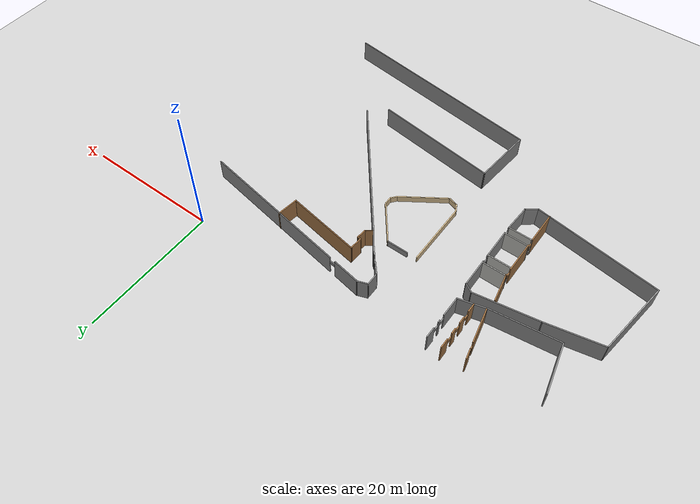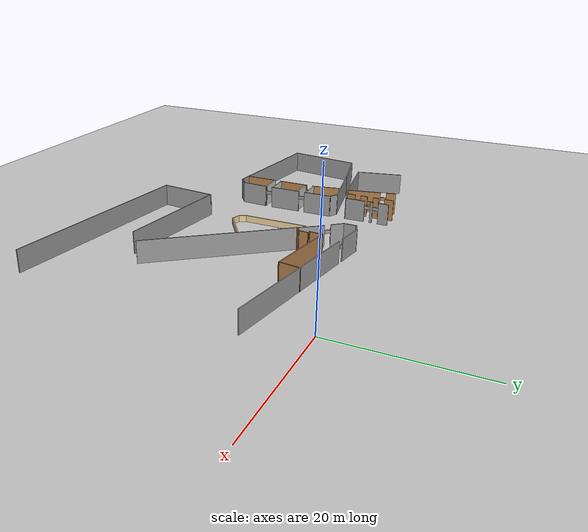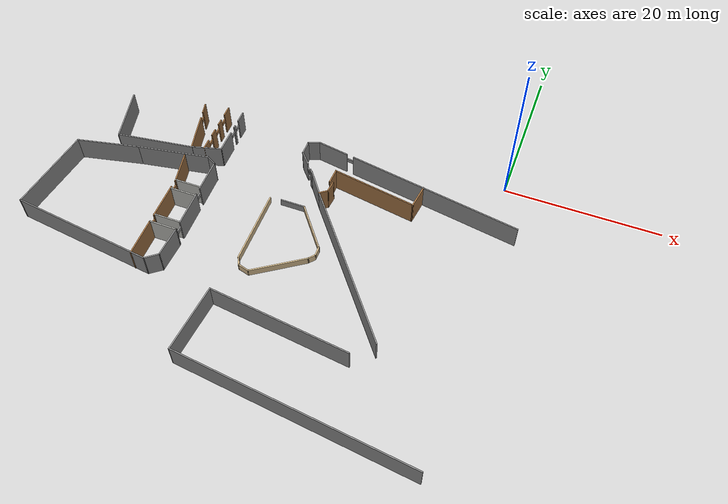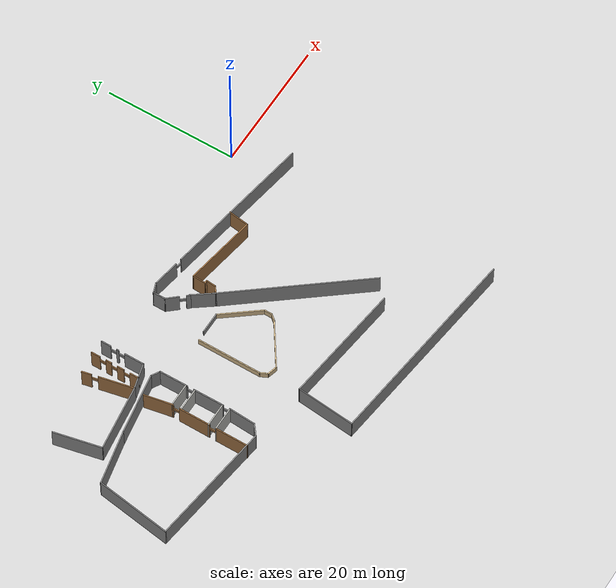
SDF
<sdf version="1.6">
 <world name="default">
  <model name="ground_plane">
   <static>1</static>
   <link name="link">
    <collision name="collision">
     <geometry><plane><normal>0 0 1</normal><size>100 100</size></plane></geometry>
     <surface><friction><ode><mu>100</mu><mu2>50</mu2></ode></friction></surface>
    </collision>
    <visual name="visual">
     <cast_shadows>0</cast_shadows>
     <geometry><plane><normal>0 0 1</normal><size>100 100</size></plane></geometry>
     <material>
      <script><uri>file://media/materials/scripts/gazebo.material</uri><name>Gazebo/Grey</name></script>
     </material>
    </visual>
   </link>
  </model>
  <model name="compound">
   <pose>3.54588 -0.628009 0 0 -0 0</pose>
   <link name="Wall_100">
    <collision name="Wall_100_Collision">
     <geometry><box><size>1.2615 0.15 4.0</size></box></geometry>
     <pose>0 0 1.25 0 -0 0</pose>
    </collision>
    <visual name="Wall_100_Visual">
     <pose>0 0 1.25 0 -0 0</pose>
     <geometry><box><size>1.2615 0.15 4.0</size></box></geometry>
     <material>
      <script><uri>file://media/materials/scripts/gazebo.material</uri><name>Gazebo/Wood</name></script>
      <ambient>1 1 1 1</ambient>
     </material>
     <meta><layer>0</layer></meta>
    </visual>
    <pose>-24.2062 -9.9319 0 0 -0 -2.50221</pose>
   </link>
   <link name="Wall_101">
    <collision name="Wall_101_Collision">
     <geometry><box><size>3.61722 0.15 4.0</size></box></geometry>
     <pose>0 0 1.25 0 -0 0</pose>
    </collision>
    <visual name="Wall_101_Visual">
     <pose>0 0 1.25 0 -0 0</pose>
     <geometry><box><size>3.61722 0.15 4.0</size></box></geometry>
     <material>
      <script><uri>file://media/materials/scripts/gazebo.material</uri><name>Gazebo/Grey</name></script>
      <ambient>1 1 1 1</ambient>
     </material>
     <meta><layer>0</layer></meta>
    </visual>
    <pose>-25.6814 -8.86844 0 0 -0 2.20638</pose>
   </link>
   <link name="Wall_103">
    <collision name="Wall_103_Collision">
     <geometry><box><size>22.2877 0.15 4.0</size></box></geometry>
     <pose>0 0 1.25 0 -0 0</pose>
    </collision>
    <visual name="Wall_103_Visual">
     <pose>0 0 1.25 0 -0 0</pose>
     <geometry><box><size>22.2877 0.15 4.0</size></box></geometry>
     <material>
      <script><uri>file://media/materials/scripts/gazebo.material</uri><name>Gazebo/Grey</name></script>
      <ambient>1 1 1 1</ambient>
     </material>
     <meta><layer>0</layer></meta>
    </visual>
    <pose>-17.8037 -18.9593 0 0 -0 -0.903682</pose>
   </link>
   <link name="Wall_110">
    <collision name="Wall_110_Collision">
     <geometry><box><size>18.1398 0.15 4.0</size></box></geometry>
     <pose>0 0 1.25 0 -0 0</pose>
    </collision>
    <visual name="Wall_110_Visual">
     <pose>0 0 1.25 0 -0 0</pose>
     <geometry><box><size>18.1398 0.15 4.0</size></box></geometry>
     <material>
      <script><uri>file://media/materials/scripts/gazebo.material</uri><name>Gazebo/Grey</name></script>
      <ambient>1 1 1 1</ambient>
     </material>
     <meta><layer>0</layer></meta>
    </visual>
    <pose>-22.3255 -28.6713 0 0 -0 3.01597</pose>
   </link>
   <link name="Wall_111">
    <collision name="Wall_111_Collision">
     <geometry><box><size>8.79176 0.15 4.0</size></box></geometry>
     <pose>0 0 1.25 0 -0 0</pose>
    </collision>
    <visual name="Wall_111_Visual">
     <pose>0 0 1.25 0 -0 0</pose>
     <geometry><box><size>8.79176 0.15 4.0</size></box></geometry>
     <material>
      <script><uri>file://media/materials/scripts/gazebo.material</uri><name>Gazebo/Grey</name></script>
      <ambient>1 1 1 1</ambient>
     </material>
     <meta><layer>0</layer></meta>
    </visual>
    <pose>-31.6635 -31.8453 0 0 -0 -1.66676</pose>
   </link>
   <link name="Wall_112">
    <collision name="Wall_112_Collision">
     <geometry><box><size>30.7378 0.15 4.0</size></box></geometry>
     <pose>0 0 1.25 0 -0 0</pose>
    </collision>
    <visual name="Wall_112_Visual">
     <pose>0 0 1.25 0 -0 0</pose>
     <geometry><box><size>30.7378 0.15 4.0</size></box></geometry>
     <material>
      <script><uri>file://media/materials/scripts/gazebo.material</uri><name>Gazebo/Grey</name></script>
      <ambient>1 1 1 1</ambient>
     </material>
     <meta><layer>0</layer></meta>
    </visual>
    <pose>-16.8975 -38.0092 0 0 -0 -0.122117</pose>
   </link>
   <link name="Wall_117">
    <collision name="Wall_117_Collision">
     <geometry><box><size>3.25 0.15 1</size></box></geometry>
     <pose>0 0 0.5 0 -0 0</pose>
    </collision>
    <visual name="Wall_117_Visual">
     <pose>0 0 0.5 0 -0 0</pose>
     <geometry><box><size>3.25 0.15 1</size></box></geometry>
     <material>
      <script><uri>file://media/materials/scripts/gazebo.material</uri><name>Gazebo/Grey</name></script>
      <ambient>1 1 1 1</ambient>
     </material>
     <meta><layer>0</layer></meta>
    </visual>
    <pose>-27.8447 -11.3314 0 0 -0 0</pose>
   </link>
   <link name="Wall_118">
    <collision name="Wall_118_Collision">
     <geometry><box><size>6.66654 0.15 1</size></box></geometry>
     <pose>0 0 0.5 0 -0 0</pose>
    </collision>
    <visual name="Wall_118_Visual">
     <pose>0 0 0.5 0 -0 0</pose>
     <geometry><box><size>6.66654 0.15 1</size></box></geometry>
     <material>
      <script><uri>file://media/materials/scripts/gazebo.material</uri><name>Gazebo/Grey</name></script>
      <ambient>0.921569 0.807843 0.615686 1</ambient>
     </material>
     <meta><layer>0</layer></meta>
    </visual>
    <pose>-24.2967 -13.9054 0 0 -0 -0.910722</pose>
   </link>
   <link name="Wall_119">
    <collision name="Wall_119_Collision">
     <geometry><box><size>1.29783 0.15 1</size></box></geometry>
     <pose>0 0 0.5 0 -0 0</pose>
    </collision>
    <visual name="Wall_119_Visual">
     <pose>0 0 0.5 0 -0 0</pose>
     <geometry><box><size>1.29783 0.15 1</size></box></geometry>
     <material>
      <script><uri>file://media/materials/scripts/gazebo.material</uri><name>Gazebo/Grey</name></script>
      <ambient>0.921569 0.807843 0.615686 1</ambient>
     </material>
     <meta><layer>0</layer></meta>
    </visual>
    <pose>-22.2987 -17.0529 0 0 -0 -1.5708</pose>
   </link>
   <link name="Wall_120">
    <collision name="Wall_120_Collision">
     <geometry><box><size>1.13871 0.15 1</size></box></geometry>
     <pose>0 0 0.5 0 -0 0</pose>
    </collision>
    <visual name="Wall_120_Visual">
     <pose>0 0 0.5 0 -0 0</pose>
     <geometry><box><size>1.13871 0.15 1</size></box></geometry>
     <material>
      <script><uri>file://media/materials/scripts/gazebo.material</uri><name>Gazebo/Grey</name></script>
      <ambient>0.921569 0.807843 0.615686 1</ambient>
     </material>
     <meta><layer>0</layer></meta>
    </visual>
    <pose>-22.6117 -18.0094 0 0 -0 -2.25596</pose>
   </link>
   <link name="Wall_121">
    <collision name="Wall_121_Collision">
     <geometry><box><size>7.46263 0.15 1</size></box></geometry>
     <pose>0 0 0.5 0 -0 0</pose>
    </collision>
    <visual name="Wall_121_Visual">
     <pose>0 0 0.5 0 -0 0</pose>
     <geometry><box><size>7.46263 0.15 1</size></box></geometry>
     <material>
      <script><uri>file://media/materials/scripts/gazebo.material</uri><name>Gazebo/Grey</name></script>
      <ambient>0.921569 0.807843 0.615686 1</ambient>
     </material>
     <meta><layer>0</layer></meta>
    </visual>
    <pose>-25.9512 -20.4444 0 0 -0 -2.54578</pose>
   </link>
   <link name="Wall_122">
    <collision name="Wall_122_Collision">
     <geometry><box><size>1.55945 0.15 1</size></box></geometry>
     <pose>0 0 0.5 0 -0 0</pose>
    </collision>
    <visual name="Wall_122_Visual">
     <pose>0 0 0.5 0 -0 0</pose>
     <geometry><box><size>1.55945 0.15 1</size></box></geometry>
     <material>
      <script><uri>file://media/materials/scripts/gazebo.material</uri><name>Gazebo/Grey</name></script>
      <ambient>0.921569 0.807843 0.615686 1</ambient>
     </material>
     <meta><layer>0</layer></meta>
    </visual>
    <pose>-29.6557 -22.3049 0 0 -0 2.86632</pose>
   </link>
   <link name="Wall_123">
    <collision name="Wall_123_Collision">
     <geometry><box><size>1.28564 0.15 1</size></box></geometry>
     <pose>0 0 0.5 0 -0 0</pose>
    </collision>
    <visual name="Wall_123_Visual">
     <pose>0 0 0.5 0 -0 0</pose>
     <geometry><box><size>1.28564 0.15 1</size></box></geometry>
     <material>
      <script><uri>file://media/materials/scripts/gazebo.material</uri><name>Gazebo/Grey</name></script>
      <ambient>0.921569 0.807843 0.615686 1</ambient>
     </material>
     <meta><layer>0</layer></meta>
    </visual>
    <pose>-30.5947 -21.6094 0 0 -0 2.04863</pose>
   </link>
   <link name="Wall_126">
    <collision name="Wall_126_Collision">
     <geometry><box><size>9.35636 0.15 4.0</size></box></geometry>
     <pose>0 0 1.25 0 -0 0</pose>
    </collision>
    <visual name="Wall_126_Visual">
     <pose>0 0 1.25 0 -0 0</pose>
     <geometry><box><size>9.35636 0.15 4.0</size></box></geometry>
     <material>
      <script><uri>file://media/materials/scripts/gazebo.material</uri><name>Gazebo/Grey</name></script>
      <ambient>1 1 1 1</ambient>
     </material>
     <meta><layer>0</layer></meta>
    </visual>
    <pose>-44.5077 -10.5659 0 0 -0 0.167012</pose>
   </link>
   <link name="Wall_127">
    <collision name="Wall_127_Collision">
     <geometry><box><size>1.52204 0.15 4.0</size></box></geometry>
     <pose>0 0 1.25 0 -0 0</pose>
    </collision>
    <visual name="Wall_127_Visual">
     <pose>0 0 1.25 0 -0 0</pose>
     <geometry><box><size>1.52204 0.15 4.0</size></box></geometry>
     <material>
      <script><uri>file://media/materials/scripts/gazebo.material</uri><name>Gazebo/Grey</name></script>
      <ambient>1 1 1 1</ambient>
     </material>
     <meta><layer>0</layer></meta>
    </visual>
    <pose>-39.3773 -10.1486 0 0 -0 -0.531724</pose>
   </link>
   <link name="Wall_128">
    <pose>-38.7338 -15.9399 0 0 -0 -1.56121</pose>
    <visual name="Wall_128_Visual_0">
     <pose>-3.32744 0 1.25 0 -0 0</pose>
     <geometry><box><size>4.38207 0.15 4.0</size></box></geometry>
     <material>
      <script><uri>file://media/materials/scripts/gazebo.material</uri><name>Gazebo/Grey</name></script>
      <ambient>1 1 1 1</ambient>
     </material>
     <meta><layer>0</layer></meta>
    </visual>
    <collision name="Wall_128_Collision_0">
     <geometry><box><size>4.38207 0.15 4.0</size></box></geometry>
     <pose>-3.32744 0 1.25 0 -0 0</pose>
    </collision>
    <visual name="Wall_128_Visual_1">
     <pose>2.09262 0 1.25 0 -0 0</pose>
     <geometry><box><size>4.65806 0.15 4.0</size></box></geometry>
     <material>
      <script><uri>file://media/materials/scripts/gazebo.material</uri><name>Gazebo/Grey</name></script>
      <ambient>1 1 1 1</ambient>
     </material>
     <meta><layer>0</layer></meta>
    </visual>
    <collision name="Wall_128_Collision_1">
     <geometry><box><size>4.65806 0.15 4.0</size></box></geometry>
     <pose>2.09262 0 1.25 0 -0 0</pose>
    </collision>
    <visual name="Wall_128_Visual_2">
     <pose>5.42007 0 1.25 0 -0 0</pose>
     <geometry><box><size>0.196825 0.15 4.0</size></box></geometry>
     <material>
      <script><uri>file://media/materials/scripts/gazebo.material</uri><name>Gazebo/Grey</name></script>
      <ambient>1 1 1 1</ambient>
     </material>
     <meta><layer>0</layer></meta>
    </visual>
    <collision name="Wall_128_Collision_2">
     <geometry><box><size>0.196825 0.15 4.0</size></box></geometry>
     <pose>5.42007 0 1.25 0 -0 0</pose>
    </collision>
    <visual name="Wall_128_Visual_3">
     <pose>-0.68641 0 2.25 0 -0 0</pose>
     <geometry><box><size>0.9 0.15 0.5</size></box></geometry>
     <material>
      <script><uri>file://media/materials/scripts/gazebo.material</uri><name>Gazebo/Grey</name></script>
      <ambient>1 1 1 1</ambient>
     </material>
     <meta><layer>0</layer></meta>
    </visual>
    <collision name="Wall_128_Collision_3">
     <geometry><box><size>0.9 0.15 0.5</size></box></geometry>
     <pose>-0.68641 0 2.25 0 -0 0</pose>
    </collision>
    <visual name="Wall_128_Visual_4">
     <pose>4.87165 0 2.25 0 -0 0</pose>
     <geometry><box><size>0.9 0.15 0.5</size></box></geometry>
     <material>
      <script><uri>file://media/materials/scripts/gazebo.material</uri><name>Gazebo/Grey</name></script>
      <ambient>1 1 1 1</ambient>
     </material>
     <meta><layer>0</layer></meta>
    </visual>
    <collision name="Wall_128_Collision_4">
     <geometry><box><size>0.9 0.15 0.5</size></box></geometry>
     <pose>4.87165 0 2.25 0 -0 0</pose>
    </collision>
   </link>
   <link name="Wall_130">
    <collision name="Wall_130_Collision">
     <geometry><box><size>4.0821 0.15 4.0</size></box></geometry>
     <pose>0 0 1.25 0 -0 0</pose>
    </collision>
    <visual name="Wall_130_Visual">
     <pose>0 0 1.25 0 -0 0</pose>
     <geometry><box><size>4.0821 0.15 4.0</size></box></geometry>
     <material>
      <script><uri>file://media/materials/scripts/gazebo.material</uri><name>Gazebo/Grey</name></script>
      <ambient>1 1 1 1</ambient>
     </material>
     <meta><layer>0</layer></meta>
    </visual>
    <pose>-38.7887 -23.3465 0 0 -0 -1.62528</pose>
   </link>
   <link name="Wall_131">
    <collision name="Wall_131_Collision">
     <geometry><box><size>1.97428 0.15 4.0</size></box></geometry>
     <pose>0 0 1.25 0 -0 0</pose>
    </collision>
    <visual name="Wall_131_Visual">
     <pose>0 0 1.25 0 -0 0</pose>
     <geometry><box><size>1.97428 0.15 4.0</size></box></geometry>
     <material>
      <script><uri>file://media/materials/scripts/gazebo.material</uri><name>Gazebo/Grey</name></script>
      <ambient>1 1 1 1</ambient>
     </material>
     <meta><layer>0</layer></meta>
    </visual>
    <pose>-39.6158 -25.8696 0 0 -0 -2.48055</pose>
   </link>
   <link name="Wall_132">
    <collision name="Wall_132_Collision">
     <geometry><box><size>18.4679 0.15 4.0</size></box></geometry>
     <pose>0 0 1.25 0 -0 0</pose>
    </collision>
    <visual name="Wall_132_Visual">
     <pose>0 0 1.25 0 -0 0</pose>
     <geometry><box><size>18.4679 0.15 4.0</size></box></geometry>
     <material>
      <script><uri>file://media/materials/scripts/gazebo.material</uri><name>Gazebo/Grey</name></script>
      <ambient>1 1 1 1</ambient>
     </material>
     <meta><layer>0</layer></meta>
    </visual>
    <pose>-49.4158 -25.2296 0 0 -0 3.0102</pose>
   </link>
   <link name="Wall_134">
    <collision name="Wall_134_Collision">
     <geometry><box><size>8.21137 0.15 4.0</size></box></geometry>
     <pose>0 0 1.25 0 -0 0</pose>
    </collision>
    <visual name="Wall_134_Visual">
     <pose>0 0 1.25 0 -0 0</pose>
     <geometry><box><size>8.21137 0.15 4.0</size></box></geometry>
     <material>
      <script><uri>file://media/materials/scripts/gazebo.material</uri><name>Gazebo/Grey</name></script>
      <ambient>1 1 1 1</ambient>
     </material>
     <meta><layer>0</layer></meta>
    </visual>
    <pose>-52.9913 -12.1604 0 0 -0 -2.93439</pose>
   </link>
   <link name="Wall_135">
    <collision name="Wall_135_Collision">
     <geometry><box><size>11.3053 0.15 4.0</size></box></geometry>
     <pose>0 0 1.25 0 -0 0</pose>
    </collision>
    <visual name="Wall_135_Visual">
     <pose>0 0 1.25 0 -0 0</pose>
     <geometry><box><size>11.3053 0.15 4.0</size></box></geometry>
     <material>
      <script><uri>file://media/materials/scripts/gazebo.material</uri><name>Gazebo/Grey</name></script>
      <ambient>1 1 1 1</ambient>
     </material>
     <meta><layer>0</layer></meta>
    </visual>
    <pose>-57.7358 -18.5096 0 0 -0 -1.71472</pose>
   </link>
   <link name="Wall_137">
    <collision name="Wall_137_Collision">
     <geometry><box><size>7.19936 0.15 4.0</size></box></geometry>
     <pose>0 0 1.25 0 -0 0</pose>
    </collision>
    <visual name="Wall_137_Visual">
     <pose>0 0 1.25 0 -0 0</pose>
     <geometry><box><size>7.19936 0.15 4.0</size></box></geometry>
     <material>
      <script><uri>file://media/materials/scripts/gazebo.material</uri><name>Gazebo/Grey</name></script>
      <ambient>1 1 1 1</ambient>
     </material>
     <meta><layer>0</layer></meta>
    </visual>
    <pose>-53.2303 -6.88402 0 0 -0 -1.35499</pose>
   </link>
   <link name="Wall_138">
    <collision name="Wall_138_Collision">
     <geometry><box><size>10.0396 0.15 4.0</size></box></geometry>
     <pose>0 0 1.25 0 -0 0</pose>
    </collision>
    <visual name="Wall_138_Visual">
     <pose>0 0 1.25 0 -0 0</pose>
     <geometry><box><size>10.0396 0.15 4.0</size></box></geometry>
     <material>
      <script><uri>file://media/materials/scripts/gazebo.material</uri><name>Gazebo/Grey</name></script>
      <ambient>1 1 1 1</ambient>
     </material>
     <meta><layer>0</layer></meta>
    </visual>
    <pose>-47.5758 -9.66154 0 0 -0 0.134977</pose>
   </link>
   <link name="Wall_140">
    <collision name="Wall_140_Collision">
     <geometry><box><size>3.5 0.15 4.0</size></box></geometry>
     <pose>0 0 1.25 0 -0 0</pose>
    </collision>
    <visual name="Wall_140_Visual">
     <pose>0 0 1.25 0 -0 0</pose>
     <geometry><box><size>3.5 0.15 4.0</size></box></geometry>
     <material>
      <script><uri>file://media/materials/scripts/gazebo.material</uri><name>Gazebo/CeilingTiled</name></script>
      <ambient>1 1 1 1</ambient>
     </material>
     <meta><layer>0</layer></meta>
    </visual>
    <pose>-40.4795 -14.5311 0 0 -0 3.14159</pose>
   </link>
   <link name="Wall_142">
    <collision name="Wall_142_Collision">
     <geometry><box><size>4.16404 0.15 4.0</size></box></geometry>
     <pose>0 0 1.25 0 -0 0</pose>
    </collision>
    <visual name="Wall_142_Visual">
     <pose>0 0 1.25 0 -0 0</pose>
     <geometry><box><size>4.16404 0.15 4.0</size></box></geometry>
     <material>
      <script><uri>file://media/materials/scripts/gazebo.material</uri><name>Gazebo/Wood</name></script>
      <ambient>1 1 1 1</ambient>
     </material>
     <meta><layer>0</layer></meta>
    </visual>
    <pose>-42.5314 -12.5598 0 0 -0 -1.3819</pose>
   </link>
   <link name="Wall_143">
    <pose>-42.1545 -17.9561 0 0 -0 -1.5708</pose>
    <visual name="Wall_143_Visual_0">
     <pose>-3.3375 0 1.25 0 -0 0</pose>
     <geometry><box><size>0.324998 0.15 4.0</size></box></geometry>
     <material>
      <script><uri>file://media/materials/scripts/gazebo.material</uri><name>Gazebo/Wood</name></script>
      <ambient>1 1 1 1</ambient>
     </material>
     <meta><layer>0</layer></meta>
    </visual>
    <collision name="Wall_143_Collision_0">
     <geometry><box><size>0.324998 0.15 4.0</size></box></geometry>
     <pose>-3.3375 0 1.25 0 -0 0</pose>
    </collision>
    <visual name="Wall_143_Visual_1">
     <pose>0.110893 0 1.25 0 -0 0</pose>
     <geometry><box><size>4.77179 0.15 4.0</size></box></geometry>
     <material>
      <script><uri>file://media/materials/scripts/gazebo.material</uri><name>Gazebo/Wood</name></script>
      <ambient>1 1 1 1</ambient>
     </material>
     <meta><layer>0</layer></meta>
    </visual>
    <collision name="Wall_143_Collision_1">
     <geometry><box><size>4.77179 0.15 4.0</size></box></geometry>
     <pose>0.110893 0 1.25 0 -0 0</pose>
    </collision>
    <visual name="Wall_143_Visual_2">
     <pose>3.44839 0 1.25 0 -0 0</pose>
     <geometry><box><size>0.103211 0.15 4.0</size></box></geometry>
     <material>
      <script><uri>file://media/materials/scripts/gazebo.material</uri><name>Gazebo/Wood</name></script>
      <ambient>1 1 1 1</ambient>
     </material>
     <meta><layer>0</layer></meta>
    </visual>
    <collision name="Wall_143_Collision_2">
     <geometry><box><size>0.103211 0.15 4.0</size></box></geometry>
     <pose>3.44839 0 1.25 0 -0 0</pose>
    </collision>
    <visual name="Wall_143_Visual_3">
     <pose>-2.725 0 2.25 0 -0 0</pose>
     <geometry><box><size>0.9 0.15 0.5</size></box></geometry>
     <material>
      <script><uri>file://media/materials/scripts/gazebo.material</uri><name>Gazebo/Wood</name></script>
      <ambient>1 1 1 1</ambient>
     </material>
     <meta><layer>0</layer></meta>
    </visual>
    <collision name="Wall_143_Collision_3">
     <geometry><box><size>0.9 0.15 0.5</size></box></geometry>
     <pose>-2.725 0 2.25 0 -0 0</pose>
    </collision>
    <visual name="Wall_143_Visual_4">
     <pose>2.94679 0 2.25 0 -0 0</pose>
     <geometry><box><size>0.9 0.15 0.5</size></box></geometry>
     <material>
      <script><uri>file://media/materials/scripts/gazebo.material</uri><name>Gazebo/Wood</name></script>
      <ambient>1 1 1 1</ambient>
     </material>
     <meta><layer>0</layer></meta>
    </visual>
    <collision name="Wall_143_Collision_4">
     <geometry><box><size>0.9 0.15 0.5</size></box></geometry>
     <pose>2.94679 0 2.25 0 -0 0</pose>
    </collision>
   </link>
   <link name="Wall_144">
    <collision name="Wall_144_Collision">
     <geometry><box><size>3.62289 0.15 4.0</size></box></geometry>
     <pose>0 0 1.25 0 -0 0</pose>
    </collision>
    <visual name="Wall_144_Visual">
     <pose>0 0 1.25 0 -0 0</pose>
     <geometry><box><size>3.62289 0.15 4.0</size></box></geometry>
     <material>
      <script><uri>file://media/materials/scripts/gazebo.material</uri><name>Gazebo/CeilingTiled</name></script>
      <ambient>1 1 1 1</ambient>
     </material>
     <meta><layer>0</layer></meta>
    </visual>
    <pose>-40.4181 -21.3822 0 0 -0 -0.000643</pose>
   </link>
   <link name="Wall_146">
    <collision name="Wall_146_Collision">
     <geometry><box><size>3.5 0.15 4.0</size></box></geometry>
     <pose>0 0 1.25 0 -0 0</pose>
    </collision>
    <visual name="Wall_146_Visual">
     <pose>0 0 1.25 0 -0 0</pose>
     <geometry><box><size>3.5 0.15 4.0</size></box></geometry>
     <material>
      <script><uri>file://media/materials/scripts/gazebo.material</uri><name>Gazebo/CeilingTiled</name></script>
      <ambient>1 1 1 1</ambient>
     </material>
     <meta><layer>0</layer></meta>
    </visual>
    <pose>-40.4437 -15.9401 0 0 -0 3.14159</pose>
   </link>
   <link name="Wall_148">
    <collision name="Wall_148_Collision">
     <geometry><box><size>3.5 0.15 4.0</size></box></geometry>
     <pose>0 0 1.25 0 -0 0</pose>
    </collision>
    <visual name="Wall_148_Visual">
     <pose>0 0 1.25 0 -0 0</pose>
     <geometry><box><size>3.5 0.15 4.0</size></box></geometry>
     <material>
      <script><uri>file://media/materials/scripts/gazebo.material</uri><name>Gazebo/CeilingTiled</name></script>
      <ambient>1 1 1 1</ambient>
     </material>
     <meta><layer>0</layer></meta>
    </visual>
    <pose>-40.5014 -20.2397 0 0 -0 0</pose>
   </link>
   <link name="Wall_150">
    <collision name="Wall_150_Collision">
     <geometry><box><size>5 0.15 4.0</size></box></geometry>
     <pose>0 0 1.25 0 -0 0</pose>
    </collision>
    <visual name="Wall_150_Visual">
     <pose>0 0 1.25 0 -0 0</pose>
     <geometry><box><size>5 0.15 4.0</size></box></geometry>
     <material>
      <script><uri>file://media/materials/scripts/gazebo.material</uri><name>Gazebo/Wood</name></script>
      <ambient>1 1 1 1</ambient>
     </material>
     <meta><layer>0</layer></meta>
    </visual>
    <pose>-42.1545 -23.8061 0 0 -0 -1.5708</pose>
   </link>
   <link name="Wall_152">
    <collision name="Wall_152_Collision">
     <geometry><box><size>9.75 0.15 1</size></box></geometry>
     <pose>0 0 0.5 0 -0 0</pose>
    </collision>
    <visual name="Wall_152_Visual">
     <pose>0 0 0.5 0 -0 0</pose>
     <geometry><box><size>9.75 0.15 1</size></box></geometry>
     <material>
      <script><uri>file://media/materials/scripts/gazebo.material</uri><name>Gazebo/Grey</name></script>
      <ambient>0.921569 0.807843 0.615686 1</ambient>
     </material>
     <meta><layer>0</layer></meta>
    </visual>
    <pose>-30.8557 -16.3054 0 0 -0 1.5708</pose>
   </link>
   <link name="Wall_21">
    <pose>-13.9659 -4.88689 0 0 -0 2.97597</pose>
    <visual name="Wall_21_Visual_0">
     <pose>-2.53416 0 1.25 0 -0 0</pose>
     <geometry><box><size>22.7402 0.15 4.0</size></box></geometry>
     <material>
      <script><uri>file://media/materials/scripts/gazebo.material</uri><name>Gazebo/Grey</name></script>
      <ambient>1 1 1 1</ambient>
     </material>
     <meta><layer>0</layer></meta>
    </visual>
    <collision name="Wall_21_Collision_0">
     <geometry><box><size>22.7402 0.15 4.0</size></box></geometry>
     <pose>-2.53416 0 1.25 0 -0 0</pose>
    </collision>
    <visual name="Wall_21_Visual_1">
     <pose>11.8201 0 1.25 0 -0 0</pose>
     <geometry><box><size>4.16831 0.15 4.0</size></box></geometry>
     <material>
      <script><uri>file://media/materials/scripts/gazebo.material</uri><name>Gazebo/Grey</name></script>
      <ambient>1 1 1 1</ambient>
     </material>
     <meta><layer>0</layer></meta>
    </visual>
    <collision name="Wall_21_Collision_1">
     <geometry><box><size>4.16831 0.15 4.0</size></box></geometry>
     <pose>11.8201 0 1.25 0 -0 0</pose>
    </collision>
    <visual name="Wall_21_Visual_2">
     <pose>9.28593 0 2.25 0 -0 0</pose>
     <geometry><box><size>0.9 0.15 0.5</size></box></geometry>
     <material>
      <script><uri>file://media/materials/scripts/gazebo.material</uri><name>Gazebo/Grey</name></script>
      <ambient>1 1 1 1</ambient>
     </material>
     <meta><layer>0</layer></meta>
    </visual>
    <collision name="Wall_21_Collision_2">
     <geometry><box><size>0.9 0.15 0.5</size></box></geometry>
     <pose>9.28593 0 2.25 0 -0 0</pose>
    </collision>
   </link>
   <link name="Wall_22">
    <collision name="Wall_22_Collision">
     <geometry><box><size>1.60602 0.15 4.0</size></box></geometry>
     <pose>0 0 1.25 0 -0 0</pose>
    </collision>
    <visual name="Wall_22_Visual">
     <pose>0 0 1.25 0 -0 0</pose>
     <geometry><box><size>1.60602 0.15 4.0</size></box></geometry>
     <material>
      <script><uri>file://media/materials/scripts/gazebo.material</uri><name>Gazebo/Grey</name></script>
      <ambient>1 1 1 1</ambient>
     </material>
     <meta><layer>0</layer></meta>
    </visual>
    <pose>-28.2859 -2.86689 0 0 -0 -2.77639</pose>
   </link>
   <link name="Wall_23">
    <collision name="Wall_23_Collision">
     <geometry><box><size>1.95044 0.15 4.0</size></box></geometry>
     <pose>0 0 1.25 0 -0 0</pose>
    </collision>
    <visual name="Wall_23_Visual">
     <pose>0 0 1.25 0 -0 0</pose>
     <geometry><box><size>1.95044 0.15 4.0</size></box></geometry>
     <material>
      <script><uri>file://media/materials/scripts/gazebo.material</uri><name>Gazebo/Grey</name></script>
      <ambient>1 1 1 1</ambient>
     </material>
     <meta><layer>0</layer></meta>
    </visual>
    <pose>-28.9659 -4.02689 0 0 -0 -1.5708</pose>
   </link>
   <link name="Wall_24">
    <pose>-27.8459 -6.22689 0 0 -0 -0.859642</pose>
    <visual name="Wall_24_Visual_0">
     <pose>-0.765202 0 1.25 0 -0 0</pose>
     <geometry><box><size>2.05145 0.15 4.0</size></box></geometry>
     <material>
      <script><uri>file://media/materials/scripts/gazebo.material</uri><name>Gazebo/Grey</name></script>
      <ambient>1 1 1 1</ambient>
     </material>
     <meta><layer>0</layer></meta>
    </visual>
    <collision name="Wall_24_Collision_0">
     <geometry><box><size>2.05145 0.15 4.0</size></box></geometry>
     <pose>-0.765202 0 1.25 0 -0 0</pose>
    </collision>
    <visual name="Wall_24_Visual_1">
     <pose>1.47572 0 1.25 0 -0 0</pose>
     <geometry><box><size>0.630403 0.15 4.0</size></box></geometry>
     <material>
      <script><uri>file://media/materials/scripts/gazebo.material</uri><name>Gazebo/Grey</name></script>
      <ambient>1 1 1 1</ambient>
     </material>
     <meta><layer>0</layer></meta>
    </visual>
    <collision name="Wall_24_Collision_1">
     <geometry><box><size>0.630403 0.15 4.0</size></box></geometry>
     <pose>1.47572 0 1.25 0 -0 0</pose>
    </collision>
    <visual name="Wall_24_Visual_2">
     <pose>0.710522 0 2.25 0 -0 0</pose>
     <geometry><box><size>0.9 0.15 0.5</size></box></geometry>
     <material>
      <script><uri>file://media/materials/scripts/gazebo.material</uri><name>Gazebo/Grey</name></script>
      <ambient>1 1 1 1</ambient>
     </material>
     <meta><layer>0</layer></meta>
    </visual>
    <collision name="Wall_24_Collision_2">
     <geometry><box><size>0.9 0.15 0.5</size></box></geometry>
     <pose>0.710522 0 2.25 0 -0 0</pose>
    </collision>
   </link>
   <link name="Wall_26">
    <pose>-38.9925 -4.68484 0 0 -0 1.5708</pose>
    <visual name="Wall_26_Visual_0">
     <pose>-1.85475 0 1.25 0 -0 0</pose>
     <geometry><box><size>3.04051 0.15 4.0</size></box></geometry>
     <material>
      <script><uri>file://media/materials/scripts/gazebo.material</uri><name>Gazebo/Grey</name></script>
      <ambient>1 1 1 1</ambient>
     </material>
     <meta><layer>0</layer></meta>
    </visual>
    <collision name="Wall_26_Collision_0">
     <geometry><box><size>3.04051 0.15 4.0</size></box></geometry>
     <pose>-1.85475 0 1.25 0 -0 0</pose>
    </collision>
    <visual name="Wall_26_Visual_1">
     <pose>0.751895 0 1.25 0 -0 0</pose>
     <geometry><box><size>0.372772 0.15 4.0</size></box></geometry>
     <material>
      <script><uri>file://media/materials/scripts/gazebo.material</uri><name>Gazebo/Grey</name></script>
      <ambient>1 1 1 1</ambient>
     </material>
     <meta><layer>0</layer></meta>
    </visual>
    <collision name="Wall_26_Collision_1">
     <geometry><box><size>0.372772 0.15 4.0</size></box></geometry>
     <pose>0.751895 0 1.25 0 -0 0</pose>
    </collision>
    <visual name="Wall_26_Visual_2">
     <pose>2.60664 0 1.25 0 -0 0</pose>
     <geometry><box><size>1.53672 0.15 4.0</size></box></geometry>
     <material>
      <script><uri>file://media/materials/scripts/gazebo.material</uri><name>Gazebo/Grey</name></script>
      <ambient>1 1 1 1</ambient>
     </material>
     <meta><layer>0</layer></meta>
    </visual>
    <collision name="Wall_26_Collision_2">
     <geometry><box><size>1.53672 0.15 4.0</size></box></geometry>
     <pose>2.60664 0 1.25 0 -0 0</pose>
    </collision>
    <visual name="Wall_26_Visual_3">
     <pose>0.115509 0 2.25 0 -0 0</pose>
     <geometry><box><size>0.9 0.15 0.5</size></box></geometry>
     <material>
      <script><uri>file://media/materials/scripts/gazebo.material</uri><name>Gazebo/Grey</name></script>
      <ambient>1 1 1 1</ambient>
     </material>
     <meta><layer>0</layer></meta>
    </visual>
    <collision name="Wall_26_Collision_3">
     <geometry><box><size>0.9 0.15 0.5</size></box></geometry>
     <pose>0.115509 0 2.25 0 -0 0</pose>
    </collision>
    <visual name="Wall_26_Visual_4">
     <pose>1.38828 0 2.25 0 -0 0</pose>
     <geometry><box><size>0.9 0.15 0.5</size></box></geometry>
     <material>
      <script><uri>file://media/materials/scripts/gazebo.material</uri><name>Gazebo/Grey</name></script>
      <ambient>1 1 1 1</ambient>
     </material>
     <meta><layer>0</layer></meta>
    </visual>
    <collision name="Wall_26_Collision_4">
     <geometry><box><size>0.9 0.15 0.5</size></box></geometry>
     <pose>1.38828 0 2.25 0 -0 0</pose>
    </collision>
   </link>
   <link name="Wall_87">
    <collision name="Wall_87_Collision">
     <geometry><box><size>4 0.15 4.0</size></box></geometry>
     <pose>0 0 1.25 0 -0 0</pose>
    </collision>
    <visual name="Wall_87_Visual">
     <pose>0 0 1.25 0 -0 0</pose>
     <geometry><box><size>4 0.15 4.0</size></box></geometry>
     <material>
      <script><uri>file://media/materials/scripts/gazebo.material</uri><name>Gazebo/Grey</name></script>
      <ambient>1 1 1 1</ambient>
     </material>
     <meta><layer>0</layer></meta>
    </visual>
    <pose>-40.8519 -8.48306 0 0 -0 -2.87979</pose>
   </link>
   <link name="Wall_88">
    <pose>-43.4934 -5.33889 0 0 -0 1.7823</pose>
    <visual name="Wall_88_Visual_0">
     <pose>-1.18763 0 1.25 0 -0 0</pose>
     <geometry><box><size>5.22558 0.15 4.0</size></box></geometry>
     <material>
      <script><uri>file://media/materials/scripts/gazebo.material</uri><name>Gazebo/Wood</name></script>
      <ambient>1 1 1 1</ambient>
     </material>
     <meta><layer>0</layer></meta>
    </visual>
    <collision name="Wall_88_Collision_0">
     <geometry><box><size>5.22558 0.15 4.0</size></box></geometry>
     <pose>-1.18763 0 1.25 0 -0 0</pose>
    </collision>
    <visual name="Wall_88_Visual_1">
     <pose>3.06279 0 1.25 0 -0 0</pose>
     <geometry><box><size>1.47525 0.15 4.0</size></box></geometry>
     <material>
      <script><uri>file://media/materials/scripts/gazebo.material</uri><name>Gazebo/Wood</name></script>
      <ambient>1 1 1 1</ambient>
     </material>
     <meta><layer>0</layer></meta>
    </visual>
    <collision name="Wall_88_Collision_1">
     <geometry><box><size>1.47525 0.15 4.0</size></box></geometry>
     <pose>3.06279 0 1.25 0 -0 0</pose>
    </collision>
    <visual name="Wall_88_Visual_2">
     <pose>1.87516 0 2.25 0 -0 0</pose>
     <geometry><box><size>0.9 0.15 0.5</size></box></geometry>
     <material>
      <script><uri>file://media/materials/scripts/gazebo.material</uri><name>Gazebo/Wood</name></script>
      <ambient>1 1 1 1</ambient>
     </material>
     <meta><layer>0</layer></meta>
    </visual>
    <collision name="Wall_88_Collision_2">
     <geometry><box><size>0.9 0.15 0.5</size></box></geometry>
     <pose>1.87516 0 2.25 0 -0 0</pose>
    </collision>
   </link>
   <link name="Wall_91">
    <pose>-41.1193 -4.87174 0 0 -0 1.5708</pose>
    <visual name="Wall_91_Visual_0">
     <pose>-3.04258 0 1.25 0 -0 0</pose>
     <geometry><box><size>1.41484 0.15 4.0</size></box></geometry>
     <material>
      <script><uri>file://media/materials/scripts/gazebo.material</uri><name>Gazebo/Wood</name></script>
      <ambient>1 1 1 1</ambient>
     </material>
     <meta><layer>0</layer></meta>
    </visual>
    <collision name="Wall_91_Collision_0">
     <geometry><box><size>1.41484 0.15 4.0</size></box></geometry>
     <pose>-3.04258 0 1.25 0 -0 0</pose>
    </collision>
    <visual name="Wall_91_Visual_1">
     <pose>-0.900754 0 1.25 0 -0 0</pose>
     <geometry><box><size>1.06882 0.15 4.0</size></box></geometry>
     <material>
      <script><uri>file://media/materials/scripts/gazebo.material</uri><name>Gazebo/Wood</name></script>
      <ambient>1 1 1 1</ambient>
     </material>
     <meta><layer>0</layer></meta>
    </visual>
    <collision name="Wall_91_Collision_1">
     <geometry><box><size>1.06882 0.15 4.0</size></box></geometry>
     <pose>-0.900754 0 1.25 0 -0 0</pose>
    </collision>
    <visual name="Wall_91_Visual_2">
     <pose>0.978574 0 1.25 0 -0 0</pose>
     <geometry><box><size>0.889835 0.15 4.0</size></box></geometry>
     <material>
      <script><uri>file://media/materials/scripts/gazebo.material</uri><name>Gazebo/Wood</name></script>
      <ambient>1 1 1 1</ambient>
     </material>
     <meta><layer>0</layer></meta>
    </visual>
    <collision name="Wall_91_Collision_2">
     <geometry><box><size>0.889835 0.15 4.0</size></box></geometry>
     <pose>0.978574 0 1.25 0 -0 0</pose>
    </collision>
    <visual name="Wall_91_Visual_3">
     <pose>3.03675 0 1.25 0 -0 0</pose>
     <geometry><box><size>1.42651 0.15 4.0</size></box></geometry>
     <material>
      <script><uri>file://media/materials/scripts/gazebo.material</uri><name>Gazebo/Wood</name></script>
      <ambient>1 1 1 1</ambient>
     </material>
     <meta><layer>0</layer></meta>
    </visual>
    <collision name="Wall_91_Collision_3">
     <geometry><box><size>1.42651 0.15 4.0</size></box></geometry>
     <pose>3.03675 0 1.25 0 -0 0</pose>
    </collision>
    <visual name="Wall_91_Visual_4">
     <pose>-1.88516 0 2.25 0 -0 0</pose>
     <geometry><box><size>0.9 0.15 0.5</size></box></geometry>
     <material>
      <script><uri>file://media/materials/scripts/gazebo.material</uri><name>Gazebo/Wood</name></script>
      <ambient>1 1 1 1</ambient>
     </material>
     <meta><layer>0</layer></meta>
    </visual>
    <collision name="Wall_91_Collision_4">
     <geometry><box><size>0.9 0.15 0.5</size></box></geometry>
     <pose>-1.88516 0 2.25 0 -0 0</pose>
    </collision>
    <visual name="Wall_91_Visual_5">
     <pose>0.083656 0 2.25 0 -0 0</pose>
     <geometry><box><size>0.9 0.15 0.5</size></box></geometry>
     <material>
      <script><uri>file://media/materials/scripts/gazebo.material</uri><name>Gazebo/Wood</name></script>
      <ambient>1 1 1 1</ambient>
     </material>
     <meta><layer>0</layer></meta>
    </visual>
    <collision name="Wall_91_Collision_5">
     <geometry><box><size>0.9 0.15 0.5</size></box></geometry>
     <pose>0.083656 0 2.25 0 -0 0</pose>
    </collision>
    <visual name="Wall_91_Visual_6">
     <pose>1.87349 0 2.25 0 -0 0</pose>
     <geometry><box><size>0.9 0.15 0.5</size></box></geometry>
     <material>
      <script><uri>file://media/materials/scripts/gazebo.material</uri><name>Gazebo/Wood</name></script>
      <ambient>1 1 1 1</ambient>
     </material>
     <meta><layer>0</layer></meta>
    </visual>
    <collision name="Wall_91_Collision_6">
     <geometry><box><size>0.9 0.15 0.5</size></box></geometry>
     <pose>1.87349 0 2.25 0 -0 0</pose>
    </collision>
   </link>
   <link name="Wall_95">
    <collision name="Wall_95_Collision">
     <geometry><box><size>3.1968 0.15 4.0</size></box></geometry>
     <pose>0 0 1.25 0 -0 0</pose>
    </collision>
    <visual name="Wall_95_Visual">
     <pose>0 0 1.25 0 -0 0</pose>
     <geometry><box><size>3.1968 0.15 4.0</size></box></geometry>
     <material>
      <script><uri>file://media/materials/scripts/gazebo.material</uri><name>Gazebo/Wood</name></script>
      <ambient>1 1 1 1</ambient>
     </material>
     <meta><layer>0</layer></meta>
    </visual>
    <pose>-13.0342 -6.53569 0 0 -0 -1.70632</pose>
   </link>
   <link name="Wall_96">
    <collision name="Wall_96_Collision">
     <geometry><box><size>11.0234 0.15 4.0</size></box></geometry>
     <pose>0 0 1.25 0 -0 0</pose>
    </collision>
    <visual name="Wall_96_Visual">
     <pose>0 0 1.25 0 -0 0</pose>
     <geometry><box><size>11.0234 0.15 4.0</size></box></geometry>
     <material>
      <script><uri>file://media/materials/scripts/gazebo.material</uri><name>Gazebo/Wood</name></script>
      <ambient>1 1 1 1</ambient>
     </material>
     <meta><layer>0</layer></meta>
    </visual>
    <pose>-18.6031 -7.15318 0 0 -0 2.97679</pose>
   </link>
   <link name="Wall_97">
    <collision name="Wall_97_Collision">
     <geometry><box><size>2.05042 0.15 4.0</size></box></geometry>
     <pose>0 0 1.25 0 -0 0</pose>
    </collision>
    <visual name="Wall_97_Visual">
     <pose>0 0 1.25 0 -0 0</pose>
     <geometry><box><size>2.05042 0.15 4.0</size></box></geometry>
     <material>
      <script><uri>file://media/materials/scripts/gazebo.material</uri><name>Gazebo/Wood</name></script>
      <ambient>1 1 1 1</ambient>
     </material>
     <meta><layer>0</layer></meta>
    </visual>
    <pose>-24.0118 -7.21036 0 0 -0 -1.61895</pose>
   </link>
   <link name="Wall_98">
    <collision name="Wall_98_Collision">
     <geometry><box><size>0.585134 0.15 4.0</size></box></geometry>
     <pose>0 0 1.25 0 -0 0</pose>
    </collision>
    <visual name="Wall_98_Visual">
     <pose>0 0 1.25 0 -0 0</pose>
     <geometry><box><size>0.585134 0.15 4.0</size></box></geometry>
     <material>
      <script><uri>file://media/materials/scripts/gazebo.material</uri><name>Gazebo/Wood</name></script>
      <ambient>1 1 1 1</ambient>
     </material>
     <meta><layer>0</layer></meta>
    </visual>
    <pose>-23.8403 -8.1709 0 0 -0 -0.052583</pose>
   </link>
   <link name="Wall_99">
    <collision name="Wall_99_Collision">
     <geometry><box><size>1.57457 0.15 4.0</size></box></geometry>
     <pose>0 0 1.25 0 -0 0</pose>
    </collision>
    <visual name="Wall_99_Visual">
     <pose>0 0 1.25 0 -0 0</pose>
     <geometry><box><size>1.57457 0.15 4.0</size></box></geometry>
     <material>
      <script><uri>file://media/materials/scripts/gazebo.material</uri><name>Gazebo/Wood</name></script>
      <ambient>1 1 1 1</ambient>
     </material>
     <meta><layer>0</layer></meta>
    </visual>
    <pose>-23.6917 -8.89131 0 0 -0 -1.66727</pose>
   </link>
   <static>1</static>
  </model>
 </world>
</sdf>
